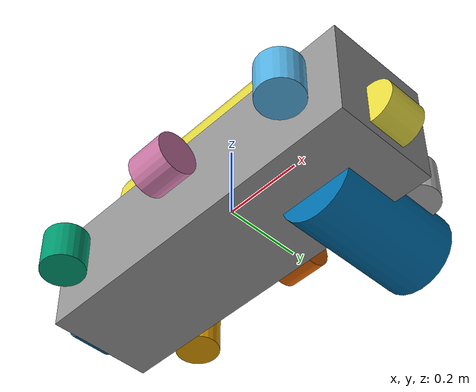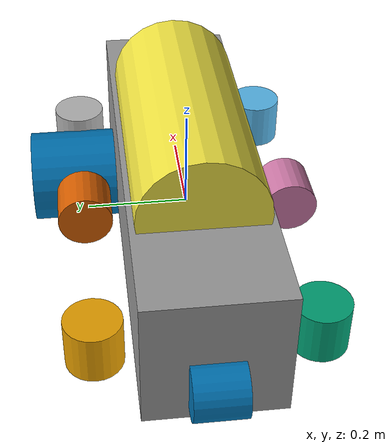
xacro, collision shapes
<?xml version="1.0"?>
<robot name="bradbury" xmlns:xacro="http://ros.org/wiki/xacro">

  <!-- Thrusters -->
  <xacro:property name="thruster_radius" value="0.055" />
  <xacro:property name="thruster_length" value="0.1" />
  <xacro:property name="thruster_mass" value="0.283" />
  <!-- Thruster offsets -->
  <xacro:property name="heave_depth" value="-0.038" />
  <xacro:property name="sway_depth" value="-0.055" />

  <!-- Frame -->
  <xacro:property name="frame_length" value="0.91" />
  <xacro:property name="frame_width" value="0.31" />
  <xacro:property name="frame_height" value="0.27" />
  <!-- MADE UP VALUE -->
  <xacro:property name="frame_mass" value="1" />

  <!-- Main Hull -->
  <xacro:property name="main_hull_radius" value="0.125" />
  <xacro:property name="main_hull_length" value="0.52" />
  <!-- MADE UP VALUE -->
  <xacro:property name="main_hull_mass" value="20.0" />

  <!-- Battery PV -->
  <xacro:property name="battery_radius" value="0.1" />
  <xacro:property name="battery_length" value="0.33" />
  <xacro:property name="battery_mass" value="3.98" />

  <!-- THRUSTER MACRO -->
  <xacro:macro name="thruster" params="prefix x y z yaw pitch roll">
    <link name="${prefix}_thruster">
      <visual>
        <origin rpy ="0 ${pi/2} 0" xyz="0 0 0"/>
        <geometry>
          <mesh filename="package://simulation/models//meshes/thruster.stl" scale="0.01 0.01 0.01"/>
        </geometry>
      </visual>

      <collision>
        <origin rpy="0 ${pi/2} 0" xyz="0 0 0"/>
        <geometry>
          <cylinder radius="${thruster_radius}" length="${thruster_length}"/>
        </geometry>
      </collision>

      <inertial>
        <origin xyz="0 0 0" rpy="0 0 0"/>
        <mass value="${thruster_mass}"/>
        <inertia
          ixx="${(thruster_mass*thruster_radius**2)/2}" ixy="0.0" ixz="0.0"
          iyy="${(thruster_mass*thruster_length**2)/12 + (thruster_mass*thruster_radius**2)/4}" iyz="0.0"
          izz="${(thruster_mass*thruster_length**2)/12 + (thruster_mass*thruster_radius**2)/4}"/>
      </inertial>

    </link>

    <joint name="base_to_${prefix}_thruster" type="fixed">
      <parent link="frame"/>
      <child link="${prefix}_thruster"/>
      <origin rpy ="${roll} ${pitch} ${yaw}" xyz="${x} ${y} ${z}"/>
    </joint>
  </xacro:macro>

  <!-- Frame - base_link is the center of the frame, and center of surger thrusters in z. -->
  <link name="frame">
    <visual>
      <origin rpy="${pi/2} 0 ${pi}" xyz="0.41552 -0.1554 -0.2159"/>
      <geometry>
        <mesh filename="package://simulation/models//meshes/frame.stl" scale="0.01 0.01 0.01"/>
      </geometry>
    </visual>

    <collision>
      <origin rpy="0 0 0" xyz="0 0 0"/>
      <geometry>
        <box size="${frame_length} ${frame_height} ${frame_height}" />
      </geometry>
    </collision>

    <inertial>
      <origin xyz="0 0 0" rpy="0 0 0"/>
      <mass value="${frame_mass}"/>
      <inertia
        ixx="${frame_mass*(frame_width**2+frame_height**2)/12}" ixy="0.0" ixz="0.0"
        iyy="${frame_mass*(frame_length**2+frame_height**2)/12}" iyz="0.0"
        izz="${frame_mass*(frame_width**2+frame_length**2)/12}"/>
    </inertial>

  </link>

  <link name="base_link">
  </link>

  <!-- This is needed for backwards compatibility only. -->
  <link name="robot">
  </link>

  <!-- Main PV -->
  <link name="main_hull">
    <visual>
      <origin rpy="${pi/2} 0 ${pi/2}" xyz="-0.2594 0 0"/>
      <geometry>
        <mesh filename="package://simulation/models//meshes/main_hull.stl" scale="0.01 0.01 0.01"/>
      </geometry>
    </visual>

    <!-- The main hull is modelled as a single cylinder. -->
    <collision>
      <origin rpy="0 ${pi/2} 0" xyz="0 0 0"/>
      <geometry>
        <cylinder radius="${main_hull_radius}" length="${main_hull_length}"/>
      </geometry>
    </collision>

    <inertial>
      <origin xyz="0 0 0" rpy="0 0 0"/>
      <mass value="${main_hull_mass}"/>
      <inertia
        ixx="${(main_hull_mass*main_hull_radius**2)/2}" ixy="0.0" ixz="0.0"
        iyy="${(main_hull_mass*main_hull_length**2)/12 + (main_hull_mass*main_hull_radius**2)/4}" iyz="0.0"
        izz="${(main_hull_mass*main_hull_length**2)/12 + (main_hull_mass*main_hull_radius**2)/4}"/>
    </inertial>

  </link>

  <!-- Battery PV -->
  <link name="battery">
    <visual>
      <origin rpy="${pi/2} 0 0" xyz="0 0.1572 0"/>
      <geometry>
        <mesh filename="package://simulation/models//meshes/battery.stl" scale="0.01 0.01 0.01"/>
      </geometry>
    </visual>

    <collision>
      <origin rpy="${pi/2} 0 0" xyz="0 0.1572 0"/>
      <geometry>
        <cylinder radius="${battery_radius}" length="${battery_length}"/>
      </geometry>
    </collision>

    <inertial>
      <origin xyz="0 0 0" rpy="0 0 0"/>
      <mass value="${thruster_mass}"/>
      <inertia
        ixx="${(battery_mass*battery_length**2)/12 + (battery_mass*battery_radius**2)/4}" ixy="0.0" ixz="0.0"
        iyy="${(battery_mass*battery_radius**2)/2}" iyz="0.0"
        izz="${(battery_mass*battery_length**2)/12 + (battery_mass*battery_radius**2)/4}"/>
    </inertial>

  </link>

  <!-- This is needed for backwards compatibility only. -->
  <joint name="base_to_robot" type="fixed">
    <parent link="robot"/>
    <child link="base_link"/>
    <origin rpy="0 0 0" xyz="0 0 0"/>
  </joint>

  <joint name="base_to_frame" type="fixed">
    <parent link="base_link"/>
    <child link="frame"/>
    <origin rpy="0 0 0" xyz="0 0 0"/>
  </joint>

  <!-- MAIN HULL TO FRAME JOINT -->
  <joint name="base_to_main_hull" type="fixed">
    <parent link="frame"/>
    <child link="main_hull"/>
    <origin rpy="0 0 0" xyz="0 0 0.1547"/>
  </joint>

  <!-- BATTERY TO FRAME JOINT -->
  <joint name="base_to_battery" type="fixed">
    <parent link="frame"/>
    <child link="battery"/>
    <origin rpy="0 0 0" xyz="0.2614 0 -0.1038"/>
  </joint>

  <!-- THRUSTER JOINTS -->
  <xacro:thruster prefix="surge_port" yaw="0" roll="${pi}" pitch="0" x="0" y="0.21" z="0"/>
  <xacro:thruster prefix="starboard_surge" yaw="0" roll="0" pitch="0" x="0" y="-0.21" z="0"/>
  <xacro:thruster prefix="port_bow_heave" yaw="${pi}" roll="0" pitch="${-pi/2}" x="0.36" y="0.209" z="${heave_depth}"/>
  <xacro:thruster prefix="port_stern_heave" yaw="${pi}" roll="0" pitch="${-pi/2}" x="-0.34" y="0.209" z="${heave_depth}"/>
  <xacro:thruster prefix="starboard_bow_heave" yaw="0" roll="0" pitch="${-pi/2}" x="0.36" y="-0.209" z="${heave_depth}"/>
  <xacro:thruster prefix="starboard_stern_heave" yaw="0" roll="0" pitch="${-pi/2}" x="-0.34" y="-0.209" z="${heave_depth}"/>
  <xacro:thruster prefix="bow_sway" yaw="${pi/2}" roll="0" pitch="0" x="0.465" y="0" z="${sway_depth}"/>
  <xacro:thruster prefix="stern_sway" yaw="${-pi/2}" roll="0" pitch="0" x="-0.465" y="0" z="${sway_depth}"/>

  <!-- GAZEBO SPECIFIC SETTINGS -->
  <gazebo reference="base_link">
      <selfCollide>false</selfCollide>
      <static>false</static>
  </gazebo>
  <gazebo reference="frame">
      <material>Gazebo/Grey</material>
      <selfCollide>false</selfCollide>
  </gazebo>
</robot>
